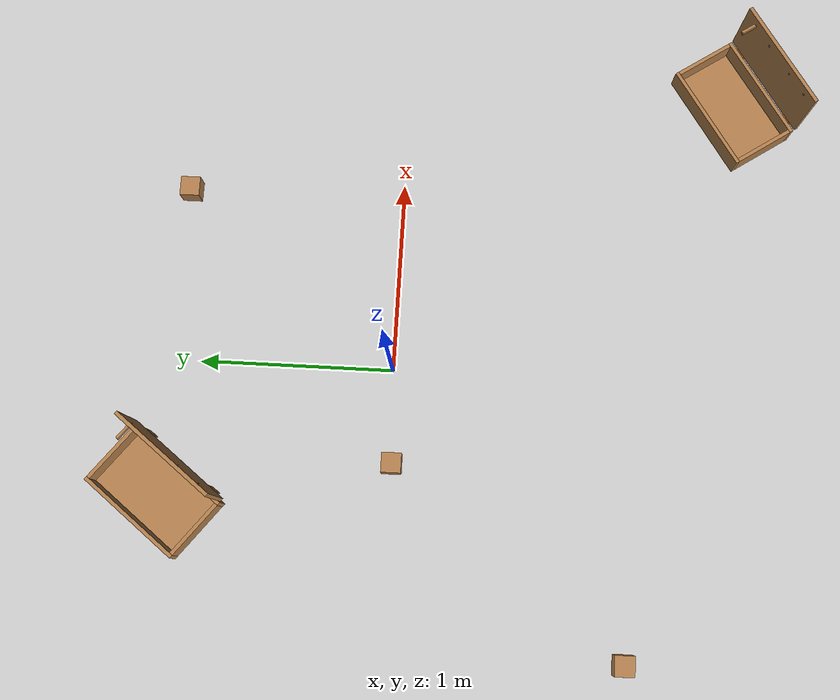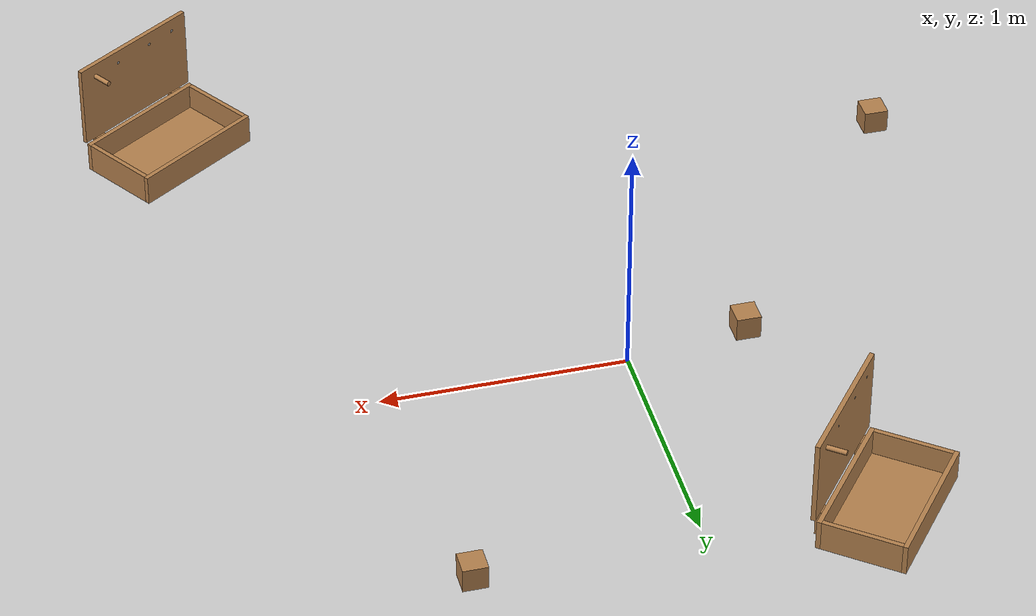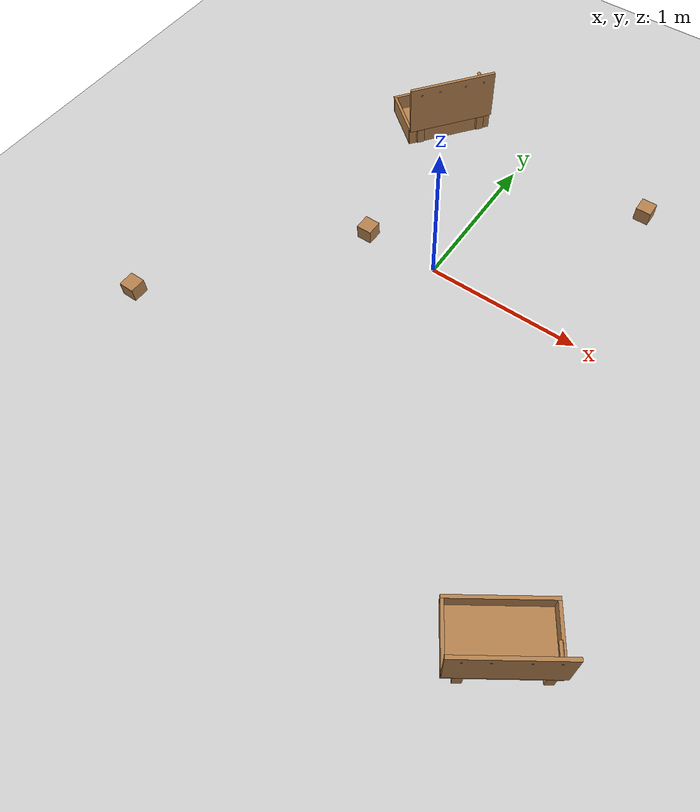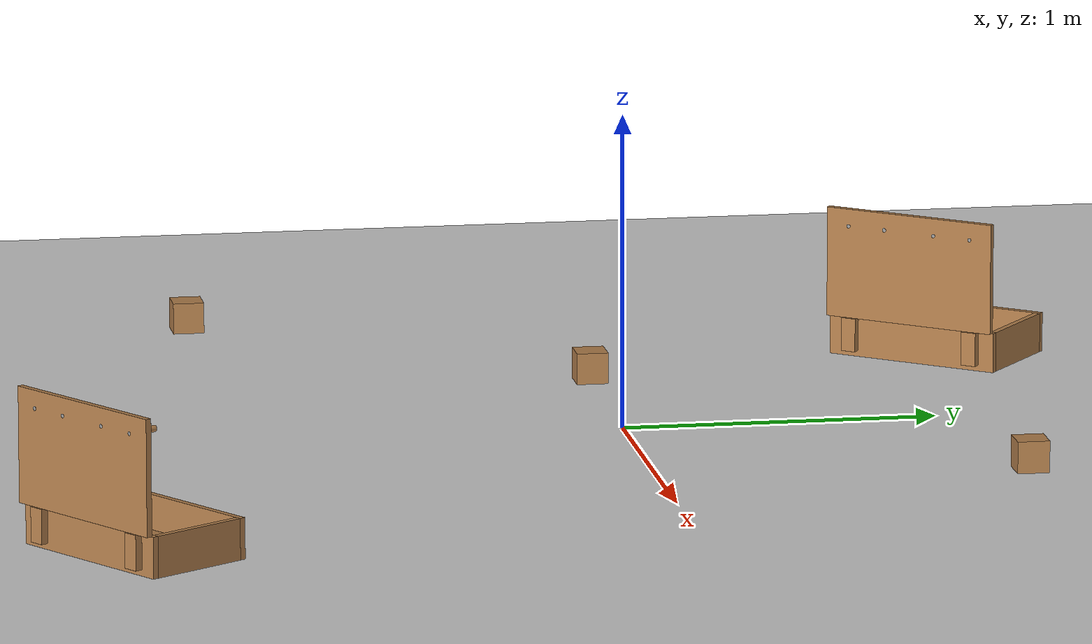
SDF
<sdf version="1.6">
 <world name="default">
  <light name="sun" type="directional">
   <pose>0 0 10 0 -0 0</pose>
   <diffuse>0.8 0.8 0.8 1</diffuse>
   <specular>0.2 0.2 0.2 1</specular>
   <attenuation>
    <range>1000</range>
    <constant>0.9</constant>
    <linear>0.01</linear>
    <quadratic>0.001</quadratic>
   </attenuation>
   <direction>-0.5 0.1 -0.9</direction>
  </light>
  <model name="ground_plane">
   <static>1</static>
   <link name="link">
    <collision name="collision">
     <geometry><plane><normal>0 0 1</normal><size>100 100</size></plane></geometry>
     <surface>
      <contact><collide_bitmask>65535</collide_bitmask></contact>
      <friction><ode><mu>100</mu><mu2>50</mu2></ode></friction>
     </surface>
    </collision>
    <visual name="visual">
     <cast_shadows>0</cast_shadows>
     <geometry><plane><normal>0 0 1</normal><size>100 100</size></plane></geometry>
     <material>
      <script><uri>file://media/materials/scripts/gazebo.material</uri><name>Gazebo/Grey</name></script>
     </material>
    </visual>
   </link>
  </model>
  <model name="cube1">
   <pose>0.903677 1.11493 0.04 0 -0 0</pose>
   <static>1</static>
   <link name="wood_cube_10cm::link">
    <pose>0 0 0.05 0 -0 0</pose>
    <inertial>
     <mass>0.5167</mass>
     <inertia>
      <ixx>0.000861167</ixx>
      <ixy>0</ixy>
      <ixz>0</ixz>
      <iyy>0.000861167</iyy>
      <iyz>0</iyz>
      <izz>0.000861167</izz>
     </inertia>
    </inertial>
    <collision name="collision">
     <geometry><box><size>0.1 0.1 0.1</size></box></geometry>
     <surface>
      <contact>
       <poissons_ratio>0.347</poissons_ratio>
       <elastic_modulus>8.8e+09</elastic_modulus>
       <ode><kp>100000</kp><kd>100</kd><max_vel>100</max_vel><min_depth>0.001</min_depth></ode>
      </contact>
      <friction>
       <torsional>
        <coefficient>1</coefficient>
        <use_patch_radius>0</use_patch_radius>
        <surface_radius>0.01</surface_radius>
       </torsional>
      </friction>
     </surface>
    </collision>
    <visual name="visual">
     <geometry><box><size>0.1 0.1 0.1</size></box></geometry>
     <material>
      <script><uri>file://media/materials/scripts/gazebo.material</uri><name>Gazebo/Wood</name></script>
     </material>
    </visual>
   </link>
  </model>
  <model name="cube2">
   <pose>-1.4 -1.2 0.04 0 -0 0</pose>
   <static>1</static>
   <link name="wood_cube_10cm::link">
    <pose>0 0 0.05 0 -0 0</pose>
    <inertial>
     <mass>0.5167</mass>
     <inertia>
      <ixx>0.000861167</ixx>
      <ixy>0</ixy>
      <ixz>0</ixz>
      <iyy>0.000861167</iyy>
      <iyz>0</iyz>
      <izz>0.000861167</izz>
     </inertia>
    </inertial>
    <collision name="collision">
     <geometry><box><size>0.1 0.1 0.1</size></box></geometry>
     <surface>
      <contact>
       <poissons_ratio>0.347</poissons_ratio>
       <elastic_modulus>8.8e+09</elastic_modulus>
       <ode><kp>100000</kp><kd>100</kd><max_vel>100</max_vel><min_depth>0.001</min_depth></ode>
      </contact>
      <friction>
       <torsional>
        <coefficient>1</coefficient>
        <use_patch_radius>0</use_patch_radius>
        <surface_radius>0.01</surface_radius>
       </torsional>
      </friction>
     </surface>
    </collision>
    <visual name="visual">
     <geometry><box><size>0.1 0.1 0.1</size></box></geometry>
     <material>
      <script><uri>file://media/materials/scripts/gazebo.material</uri><name>Gazebo/Wood</name></script>
     </material>
    </visual>
   </link>
  </model>
  <model name="cube3">
   <pose>-0.484485 -0.022922 0.04 0 -0 0</pose>
   <static>1</static>
   <link name="wood_cube_10cm::link">
    <pose>0 0 0.05 0 -0 0</pose>
    <inertial>
     <mass>0.5167</mass>
     <inertia>
      <ixx>0.000861167</ixx>
      <ixy>0</ixy>
      <ixz>0</ixz>
      <iyy>0.000861167</iyy>
      <iyz>0</iyz>
      <izz>0.000861167</izz>
     </inertia>
    </inertial>
    <collision name="collision">
     <geometry><box><size>0.1 0.1 0.1</size></box></geometry>
     <surface>
      <contact>
       <poissons_ratio>0.347</poissons_ratio>
       <elastic_modulus>8.8e+09</elastic_modulus>
       <ode><kp>100000</kp><kd>100</kd><max_vel>100</max_vel><min_depth>0.001</min_depth></ode>
      </contact>
      <friction>
       <torsional>
        <coefficient>1</coefficient>
        <use_patch_radius>0</use_patch_radius>
        <surface_radius>0.01</surface_radius>
       </torsional>
      </friction>
     </surface>
    </collision>
    <visual name="visual">
     <geometry><box><size>0.1 0.1 0.1</size></box></geometry>
     <material>
      <script><uri>file://media/materials/scripts/gazebo.material</uri><name>Gazebo/Wood</name></script>
     </material>
    </visual>
   </link>
  </model>
  <model name="wooden_case_wooden_peg2">
   <pose>-0.526357 1.0135 0.1087 2.48058 -1.57079 3.13884</pose>
   <static>1</static>
   <link name="wooden_case_wooden_peg::wooden_case::base">
    <pose>0 0 0.024 0 -0 0</pose>
    <inertial>
     <pose>-0.022184 0 0.171592 0 -0 0</pose>
     <mass>3.96264</mass>
     <inertia>
      <ixx>0.213536</ixx>
      <ixy>0</ixy>
      <ixz>0.000779377</ixz>
      <iyy>0.0708943</iyy>
      <iyz>0</iyz>
      <izz>0.154604</izz>
     </inertia>
    </inertial>
    <collision name="collision_back">
     <pose>-0.053975 0 0.1778 0 -0 0</pose>
     <geometry><box><size>0.01905 0.5461 0.3175</size></box></geometry>
     <surface>
      <contact>
       <poissons_ratio>0.347</poissons_ratio>
       <elastic_modulus>8.8e+09</elastic_modulus>
       <ode><kp>100000</kp><kd>100</kd><max_vel>100</max_vel><min_depth>0.001</min_depth></ode>
      </contact>
      <friction>
       <torsional>
        <coefficient>1</coefficient>
        <use_patch_radius>0</use_patch_radius>
        <surface_radius>0.01</surface_radius>
       </torsional>
      </friction>
     </surface>
    </collision>
    <visual name="visual_back">
     <pose>-0.053975 0 0.1778 0 -0 0</pose>
     <geometry><box><size>0.01905 0.5461 0.3175</size></box></geometry>
     <material>
      <script><uri>file://media/materials/scripts/gazebo.material</uri><name>Gazebo/Wood</name></script>
     </material>
    </visual>
    <collision name="collision_bottom">
     <pose>0 0 0.009525 0 -0 0</pose>
     <geometry><box><size>0.127 0.5842 0.01905</size></box></geometry>
     <surface>
      <contact>
       <poissons_ratio>0.347</poissons_ratio>
       <elastic_modulus>8.8e+09</elastic_modulus>
       <ode><kp>100000</kp><kd>100</kd><max_vel>100</max_vel><min_depth>0.001</min_depth></ode>
      </contact>
      <friction>
       <torsional>
        <coefficient>1</coefficient>
        <use_patch_radius>0</use_patch_radius>
        <surface_radius>0.01</surface_radius>
       </torsional>
      </friction>
     </surface>
    </collision>
    <visual name="visual_bottom">
     <pose>0 0 0.009525 0 -0 0</pose>
     <geometry><box><size>0.127 0.5842 0.01905</size></box></geometry>
     <material>
      <script><uri>file://media/materials/scripts/gazebo.material</uri><name>Gazebo/Wood</name></script>
     </material>
    </visual>
    <collision name="collision_top">
     <pose>0 0 0.346075 0 -0 0</pose>
     <geometry><box><size>0.127 0.5842 0.01905</size></box></geometry>
     <surface>
      <contact>
       <poissons_ratio>0.347</poissons_ratio>
       <elastic_modulus>8.8e+09</elastic_modulus>
       <ode><kp>100000</kp><kd>100</kd><max_vel>100</max_vel><min_depth>0.001</min_depth></ode>
      </contact>
      <friction>
       <torsional>
        <coefficient>1</coefficient>
        <use_patch_radius>0</use_patch_radius>
        <surface_radius>0.01</surface_radius>
       </torsional>
      </friction>
     </surface>
    </collision>
    <visual name="visual_top">
     <pose>0 0 0.346075 0 -0 0</pose>
     <geometry><box><size>0.127 0.5842 0.01905</size></box></geometry>
     <material>
      <script><uri>file://media/materials/scripts/gazebo.material</uri><name>Gazebo/Wood</name></script>
     </material>
    </visual>
    <collision name="collision_left">
     <pose>0 -0.282575 0.1778 0 -0 0</pose>
     <geometry><box><size>0.127 0.01905 0.3175</size></box></geometry>
     <surface>
      <contact>
       <poissons_ratio>0.347</poissons_ratio>
       <elastic_modulus>8.8e+09</elastic_modulus>
       <ode><kp>100000</kp><kd>100</kd><max_vel>100</max_vel><min_depth>0.001</min_depth></ode>
      </contact>
      <friction>
       <torsional>
        <coefficient>1</coefficient>
        <use_patch_radius>0</use_patch_radius>
        <surface_radius>0.01</surface_radius>
       </torsional>
      </friction>
     </surface>
    </collision>
    <visual name="visual_left">
     <pose>0 -0.282575 0.1778 0 -0 0</pose>
     <geometry><box><size>0.127 0.01905 0.3175</size></box></geometry>
     <material>
      <script><uri>file://media/materials/scripts/gazebo.material</uri><name>Gazebo/Wood</name></script>
     </material>
    </visual>
    <collision name="collision_right">
     <pose>0 0.282575 0.1778 0 -0 0</pose>
     <geometry><box><size>0.127 0.01905 0.3175</size></box></geometry>
     <surface>
      <contact>
       <poissons_ratio>0.347</poissons_ratio>
       <elastic_modulus>8.8e+09</elastic_modulus>
       <ode><kp>100000</kp><kd>100</kd><max_vel>100</max_vel><min_depth>0.001</min_depth></ode>
      </contact>
      <friction>
       <torsional>
        <coefficient>1</coefficient>
        <use_patch_radius>0</use_patch_radius>
        <surface_radius>0.01</surface_radius>
       </torsional>
      </friction>
     </surface>
    </collision>
    <visual name="visual_right">
     <pose>0 0.282575 0.1778 0 -0 0</pose>
     <geometry><box><size>0.127 0.01905 0.3175</size></box></geometry>
     <material>
      <script><uri>file://media/materials/scripts/gazebo.material</uri><name>Gazebo/Wood</name></script>
     </material>
    </visual>
    <collision name="collision_block_left">
     <pose>0.0095 -0.2151 -0.012 0 -0 0</pose>
     <geometry><box><size>0.108 0.05 0.024</size></box></geometry>
     <surface>
      <contact>
       <poissons_ratio>0.347</poissons_ratio>
       <elastic_modulus>8.8e+09</elastic_modulus>
       <ode><kp>100000</kp><kd>100</kd><max_vel>100</max_vel><min_depth>0.001</min_depth></ode>
      </contact>
      <friction>
       <torsional>
        <coefficient>1</coefficient>
        <use_patch_radius>0</use_patch_radius>
        <surface_radius>0.01</surface_radius>
       </torsional>
      </friction>
     </surface>
    </collision>
    <visual name="visual_block_left">
     <pose>0.0095 -0.2151 -0.012 0 -0 0</pose>
     <geometry><box><size>0.108 0.05 0.024</size></box></geometry>
     <material>
      <script><uri>file://media/materials/scripts/gazebo.material</uri><name>Gazebo/Wood</name></script>
     </material>
    </visual>
    <collision name="collision_block_right">
     <pose>0.0095 0.2151 -0.012 0 -0 0</pose>
     <geometry><box><size>0.108 0.05 0.024</size></box></geometry>
     <surface>
      <contact>
       <poissons_ratio>0.347</poissons_ratio>
       <elastic_modulus>8.8e+09</elastic_modulus>
       <ode><kp>100000</kp><kd>100</kd><max_vel>100</max_vel><min_depth>0.001</min_depth></ode>
      </contact>
      <friction>
       <torsional>
        <coefficient>1</coefficient>
        <use_patch_radius>0</use_patch_radius>
        <surface_radius>0.01</surface_radius>
       </torsional>
      </friction>
     </surface>
    </collision>
    <visual name="visual_block_right">
     <pose>0.0095 0.2151 -0.012 0 -0 0</pose>
     <geometry><box><size>0.108 0.05 0.024</size></box></geometry>
     <material>
      <script><uri>file://media/materials/scripts/gazebo.material</uri><name>Gazebo/Wood</name></script>
     </material>
    </visual>
   </link>
   <link name="wooden_case_wooden_peg::wooden_case::lid">
    <pose>0.243775 0 0.009525 0 -0 0</pose>
    <inertial>
     <mass>1.97874</mass>
     <inertia>
      <ixx>0.0563367</ixx>
      <ixy>0</ixy>
      <ixz>0</ixz>
      <iyy>0.020911</iyy>
      <iyz>0</iyz>
      <izz>0.0771281</izz>
     </inertia>
    </inertial>
    <collision name="collision">
     <geometry><box><size>0.3556 0.5842 0.01905</size></box></geometry>
     <surface>
      <contact>
       <poissons_ratio>0.347</poissons_ratio>
       <elastic_modulus>8.8e+09</elastic_modulus>
       <ode><kp>100000</kp><kd>100</kd><max_vel>100</max_vel><min_depth>0.001</min_depth></ode>
      </contact>
      <friction>
       <torsional>
        <coefficient>1</coefficient>
        <use_patch_radius>0</use_patch_radius>
        <surface_radius>0.01</surface_radius>
       </torsional>
      </friction>
     </surface>
    </collision>
    <visual name="visual">
     <geometry><box><size>0.3556 0.5842 0.01905</size></box></geometry>
     <material>
      <script><uri>file://media/materials/scripts/gazebo.material</uri><name>Gazebo/Wood</name></script>
     </material>
    </visual>
    <visual name="tee_nut_1">
     <pose>0.122 -0.216 0 0 -0 0</pose>
     <geometry><cylinder><radius>0.00635</radius><length>0.0192405</length></cylinder></geometry>
     <material>
      <script><uri>file://media/materials/scripts/gazebo.material</uri><name>Gazebo/Grey</name></script>
     </material>
    </visual>
    <visual name="tee_nut_2">
     <pose>0.122 -0.088 0 0 -0 0</pose>
     <geometry><cylinder><radius>0.00635</radius><length>0.0192405</length></cylinder></geometry>
     <material>
      <script><uri>file://media/materials/scripts/gazebo.material</uri><name>Gazebo/Grey</name></script>
     </material>
    </visual>
    <visual name="tee_nut_3">
     <pose>0.122 0.088 0 0 -0 0</pose>
     <geometry><cylinder><radius>0.00635</radius><length>0.0192405</length></cylinder></geometry>
     <material>
      <script><uri>file://media/materials/scripts/gazebo.material</uri><name>Gazebo/Grey</name></script>
     </material>
    </visual>
    <visual name="tee_nut_4">
     <pose>0.122 0.216 0 0 -0 0</pose>
     <geometry><cylinder><radius>0.00635</radius><length>0.0192405</length></cylinder></geometry>
     <material>
      <script><uri>file://media/materials/scripts/gazebo.material</uri><name>Gazebo/Grey</name></script>
     </material>
    </visual>
   </link>
   <joint name="wooden_case_wooden_peg::wooden_case::lid_hinge" type="revolute">
    <pose>-0.1778 0 0.01905 0 -0 0</pose>
    <parent>wooden_case_wooden_peg::wooden_case::base</parent>
    <child>wooden_case_wooden_peg::wooden_case::lid</child>
    <axis>
     <xyz>0 1 0</xyz>
     <limit><upper>0.523599</upper><lower>-1.5708</lower></limit>
     <use_parent_model_frame>0</use_parent_model_frame>
     <dynamics><spring_reference>0</spring_reference><spring_stiffness>0</spring_stiffness></dynamics>
    </axis>
   </joint>
   <link name="wooden_case_wooden_peg::peg::link">
    <pose>0.365774 0.216 0.05905 0 -0 0</pose>
    <inertial>
     <mass>0.0175</mass>
     <inertia>
      <ixx>9.74923e-06</ixx>
      <ixy>0</ixy>
      <ixz>0</ixz>
      <iyy>9.74923e-06</iyy>
      <iyz>0</iyz>
      <izz>8.31797e-07</izz>
     </inertia>
    </inertial>
    <collision name="collision">
     <geometry><cylinder><radius>0.00975</radius><length>0.08</length></cylinder></geometry>
     <surface>
      <contact>
       <poissons_ratio>0.347</poissons_ratio>
       <elastic_modulus>8.8e+09</elastic_modulus>
       <ode><kp>100000</kp><kd>100</kd><max_vel>100</max_vel><min_depth>0.001</min_depth></ode>
      </contact>
      <friction>
       <torsional>
        <coefficient>1</coefficient>
        <use_patch_radius>0</use_patch_radius>
        <surface_radius>0.01</surface_radius>
       </torsional>
      </friction>
     </surface>
    </collision>
    <visual name="visual">
     <geometry><cylinder><radius>0.00975</radius><length>0.08</length></cylinder></geometry>
     <material>
      <script><uri>file://media/materials/scripts/gazebo.material</uri><name>Gazebo/Wood</name></script>
     </material>
    </visual>
   </link>
   <joint name="wooden_case_wooden_peg::case_peg" type="revolute">
    <child>wooden_case_wooden_peg::peg::link</child>
    <parent>wooden_case_wooden_peg::wooden_case::lid</parent>
    <axis>
     <xyz>0 0 1</xyz>
     <limit><upper>0</upper><lower>0</lower></limit>
     <use_parent_model_frame>0</use_parent_model_frame>
     <dynamics><spring_reference>0</spring_reference><spring_stiffness>0</spring_stiffness></dynamics>
    </axis>
   </joint>
  </model>
  <gravity>0 0 -9.8</gravity>
  <magnetic_field>6e-06 2.3e-05 -4.2e-05</magnetic_field>
  <atmosphere type="adiabatic"/>
  <physics name="default_physics" default="0" type="ode">
   <max_step_size>0.001</max_step_size>
   <real_time_factor>1</real_time_factor>
   <real_time_update_rate>1000</real_time_update_rate>
  </physics>
  <scene><ambient>0.4 0.4 0.4 1</ambient><background>0.7 0.7 0.7 1</background><shadows>1</shadows></scene>
  <audio><device>default</device></audio>
  <spherical_coordinates>
   <surface_model>EARTH_WGS84</surface_model>
   <latitude_deg>0</latitude_deg>
   <longitude_deg>0</longitude_deg>
   <elevation>0</elevation>
   <heading_deg>0</heading_deg>
  </spherical_coordinates>
  <model name="wooden_case_wooden_peg2_clone">
   <pose>1.61248 -1.88464 0.1087 2.15497 -1.57079 -3.14123</pose>
   <static>1</static>
   <link name="wooden_case_wooden_peg::wooden_case::base">
    <pose>0 0 0.024 0 -0 0</pose>
    <inertial>
     <pose>-0.022184 0 0.171592 0 -0 0</pose>
     <mass>3.96264</mass>
     <inertia>
      <ixx>0.213536</ixx>
      <ixy>0</ixy>
      <ixz>0.000779377</ixz>
      <iyy>0.0708943</iyy>
      <iyz>0</iyz>
      <izz>0.154604</izz>
     </inertia>
    </inertial>
    <collision name="collision_back">
     <pose>-0.053975 0 0.1778 0 -0 0</pose>
     <geometry><box><size>0.01905 0.5461 0.3175</size></box></geometry>
     <surface>
      <contact>
       <poissons_ratio>0.347</poissons_ratio>
       <elastic_modulus>8.8e+09</elastic_modulus>
       <ode><kp>100000</kp><kd>100</kd><max_vel>100</max_vel><min_depth>0.001</min_depth></ode>
      </contact>
      <friction>
       <torsional>
        <coefficient>1</coefficient>
        <use_patch_radius>0</use_patch_radius>
        <surface_radius>0.01</surface_radius>
       </torsional>
      </friction>
     </surface>
    </collision>
    <visual name="visual_back">
     <pose>-0.053975 0 0.1778 0 -0 0</pose>
     <geometry><box><size>0.01905 0.5461 0.3175</size></box></geometry>
     <material>
      <script><uri>file://media/materials/scripts/gazebo.material</uri><name>Gazebo/Wood</name></script>
     </material>
    </visual>
    <collision name="collision_bottom">
     <pose>0 0 0.009525 0 -0 0</pose>
     <geometry><box><size>0.127 0.5842 0.01905</size></box></geometry>
     <surface>
      <contact>
       <poissons_ratio>0.347</poissons_ratio>
       <elastic_modulus>8.8e+09</elastic_modulus>
       <ode><kp>100000</kp><kd>100</kd><max_vel>100</max_vel><min_depth>0.001</min_depth></ode>
      </contact>
      <friction>
       <torsional>
        <coefficient>1</coefficient>
        <use_patch_radius>0</use_patch_radius>
        <surface_radius>0.01</surface_radius>
       </torsional>
      </friction>
     </surface>
    </collision>
    <visual name="visual_bottom">
     <pose>0 0 0.009525 0 -0 0</pose>
     <geometry><box><size>0.127 0.5842 0.01905</size></box></geometry>
     <material>
      <script><uri>file://media/materials/scripts/gazebo.material</uri><name>Gazebo/Wood</name></script>
     </material>
    </visual>
    <collision name="collision_top">
     <pose>0 0 0.346075 0 -0 0</pose>
     <geometry><box><size>0.127 0.5842 0.01905</size></box></geometry>
     <surface>
      <contact>
       <poissons_ratio>0.347</poissons_ratio>
       <elastic_modulus>8.8e+09</elastic_modulus>
       <ode><kp>100000</kp><kd>100</kd><max_vel>100</max_vel><min_depth>0.001</min_depth></ode>
      </contact>
      <friction>
       <torsional>
        <coefficient>1</coefficient>
        <use_patch_radius>0</use_patch_radius>
        <surface_radius>0.01</surface_radius>
       </torsional>
      </friction>
     </surface>
    </collision>
    <visual name="visual_top">
     <pose>0 0 0.346075 0 -0 0</pose>
     <geometry><box><size>0.127 0.5842 0.01905</size></box></geometry>
     <material>
      <script><uri>file://media/materials/scripts/gazebo.material</uri><name>Gazebo/Wood</name></script>
     </material>
    </visual>
    <collision name="collision_left">
     <pose>0 -0.282575 0.1778 0 -0 0</pose>
     <geometry><box><size>0.127 0.01905 0.3175</size></box></geometry>
     <surface>
      <contact>
       <poissons_ratio>0.347</poissons_ratio>
       <elastic_modulus>8.8e+09</elastic_modulus>
       <ode><kp>100000</kp><kd>100</kd><max_vel>100</max_vel><min_depth>0.001</min_depth></ode>
      </contact>
      <friction>
       <torsional>
        <coefficient>1</coefficient>
        <use_patch_radius>0</use_patch_radius>
        <surface_radius>0.01</surface_radius>
       </torsional>
      </friction>
     </surface>
    </collision>
    <visual name="visual_left">
     <pose>0 -0.282575 0.1778 0 -0 0</pose>
     <geometry><box><size>0.127 0.01905 0.3175</size></box></geometry>
     <material>
      <script><uri>file://media/materials/scripts/gazebo.material</uri><name>Gazebo/Wood</name></script>
     </material>
    </visual>
    <collision name="collision_right">
     <pose>0 0.282575 0.1778 0 -0 0</pose>
     <geometry><box><size>0.127 0.01905 0.3175</size></box></geometry>
     <surface>
      <contact>
       <poissons_ratio>0.347</poissons_ratio>
       <elastic_modulus>8.8e+09</elastic_modulus>
       <ode><kp>100000</kp><kd>100</kd><max_vel>100</max_vel><min_depth>0.001</min_depth></ode>
      </contact>
      <friction>
       <torsional>
        <coefficient>1</coefficient>
        <use_patch_radius>0</use_patch_radius>
        <surface_radius>0.01</surface_radius>
       </torsional>
      </friction>
     </surface>
    </collision>
    <visual name="visual_right">
     <pose>0 0.282575 0.1778 0 -0 0</pose>
     <geometry><box><size>0.127 0.01905 0.3175</size></box></geometry>
     <material>
      <script><uri>file://media/materials/scripts/gazebo.material</uri><name>Gazebo/Wood</name></script>
     </material>
    </visual>
    <collision name="collision_block_left">
     <pose>0.0095 -0.2151 -0.012 0 -0 0</pose>
     <geometry><box><size>0.108 0.05 0.024</size></box></geometry>
     <surface>
      <contact>
       <poissons_ratio>0.347</poissons_ratio>
       <elastic_modulus>8.8e+09</elastic_modulus>
       <ode><kp>100000</kp><kd>100</kd><max_vel>100</max_vel><min_depth>0.001</min_depth></ode>
      </contact>
      <friction>
       <torsional>
        <coefficient>1</coefficient>
        <use_patch_radius>0</use_patch_radius>
        <surface_radius>0.01</surface_radius>
       </torsional>
      </friction>
     </surface>
    </collision>
    <visual name="visual_block_left">
     <pose>0.0095 -0.2151 -0.012 0 -0 0</pose>
     <geometry><box><size>0.108 0.05 0.024</size></box></geometry>
     <material>
      <script><uri>file://media/materials/scripts/gazebo.material</uri><name>Gazebo/Wood</name></script>
     </material>
    </visual>
    <collision name="collision_block_right">
     <pose>0.0095 0.2151 -0.012 0 -0 0</pose>
     <geometry><box><size>0.108 0.05 0.024</size></box></geometry>
     <surface>
      <contact>
       <poissons_ratio>0.347</poissons_ratio>
       <elastic_modulus>8.8e+09</elastic_modulus>
       <ode><kp>100000</kp><kd>100</kd><max_vel>100</max_vel><min_depth>0.001</min_depth></ode>
      </contact>
      <friction>
       <torsional>
        <coefficient>1</coefficient>
        <use_patch_radius>0</use_patch_radius>
        <surface_radius>0.01</surface_radius>
       </torsional>
      </friction>
     </surface>
    </collision>
    <visual name="visual_block_right">
     <pose>0.0095 0.2151 -0.012 0 -0 0</pose>
     <geometry><box><size>0.108 0.05 0.024</size></box></geometry>
     <material>
      <script><uri>file://media/materials/scripts/gazebo.material</uri><name>Gazebo/Wood</name></script>
     </material>
    </visual>
   </link>
   <link name="wooden_case_wooden_peg::wooden_case::lid">
    <pose>0.243775 0 0.009525 0 -0 0</pose>
    <inertial>
     <mass>1.97874</mass>
     <inertia>
      <ixx>0.0563367</ixx>
      <ixy>0</ixy>
      <ixz>0</ixz>
      <iyy>0.020911</iyy>
      <iyz>0</iyz>
      <izz>0.0771281</izz>
     </inertia>
    </inertial>
    <collision name="collision">
     <geometry><box><size>0.3556 0.5842 0.01905</size></box></geometry>
     <surface>
      <contact>
       <poissons_ratio>0.347</poissons_ratio>
       <elastic_modulus>8.8e+09</elastic_modulus>
       <ode><kp>100000</kp><kd>100</kd><max_vel>100</max_vel><min_depth>0.001</min_depth></ode>
      </contact>
      <friction>
       <torsional>
        <coefficient>1</coefficient>
        <use_patch_radius>0</use_patch_radius>
        <surface_radius>0.01</surface_radius>
       </torsional>
      </friction>
     </surface>
    </collision>
    <visual name="visual">
     <geometry><box><size>0.3556 0.5842 0.01905</size></box></geometry>
     <material>
      <script><uri>file://media/materials/scripts/gazebo.material</uri><name>Gazebo/Wood</name></script>
     </material>
    </visual>
    <visual name="tee_nut_1">
     <pose>0.122 -0.216 0 0 -0 0</pose>
     <geometry><cylinder><radius>0.00635</radius><length>0.0192405</length></cylinder></geometry>
     <material>
      <script><uri>file://media/materials/scripts/gazebo.material</uri><name>Gazebo/Grey</name></script>
     </material>
    </visual>
    <visual name="tee_nut_2">
     <pose>0.122 -0.088 0 0 -0 0</pose>
     <geometry><cylinder><radius>0.00635</radius><length>0.0192405</length></cylinder></geometry>
     <material>
      <script><uri>file://media/materials/scripts/gazebo.material</uri><name>Gazebo/Grey</name></script>
     </material>
    </visual>
    <visual name="tee_nut_3">
     <pose>0.122 0.088 0 0 -0 0</pose>
     <geometry><cylinder><radius>0.00635</radius><length>0.0192405</length></cylinder></geometry>
     <material>
      <script><uri>file://media/materials/scripts/gazebo.material</uri><name>Gazebo/Grey</name></script>
     </material>
    </visual>
    <visual name="tee_nut_4">
     <pose>0.122 0.216 0 0 -0 0</pose>
     <geometry><cylinder><radius>0.00635</radius><length>0.0192405</length></cylinder></geometry>
     <material>
      <script><uri>file://media/materials/scripts/gazebo.material</uri><name>Gazebo/Grey</name></script>
     </material>
    </visual>
   </link>
   <joint name="wooden_case_wooden_peg::wooden_case::lid_hinge" type="revolute">
    <pose>-0.1778 0 0.01905 0 -0 0</pose>
    <parent>wooden_case_wooden_peg::wooden_case::base</parent>
    <child>wooden_case_wooden_peg::wooden_case::lid</child>
    <axis>
     <xyz>0 1 0</xyz>
     <limit><upper>0.523599</upper><lower>-1.5708</lower></limit>
     <use_parent_model_frame>0</use_parent_model_frame>
     <dynamics><spring_reference>0</spring_reference><spring_stiffness>0</spring_stiffness></dynamics>
    </axis>
   </joint>
   <link name="wooden_case_wooden_peg::peg::link">
    <pose>0.365774 0.216 0.05905 0 -0 0</pose>
    <inertial>
     <mass>0.0175</mass>
     <inertia>
      <ixx>9.74923e-06</ixx>
      <ixy>0</ixy>
      <ixz>0</ixz>
      <iyy>9.74923e-06</iyy>
      <iyz>0</iyz>
      <izz>8.31797e-07</izz>
     </inertia>
    </inertial>
    <collision name="collision">
     <geometry><cylinder><radius>0.00975</radius><length>0.08</length></cylinder></geometry>
     <surface>
      <contact>
       <poissons_ratio>0.347</poissons_ratio>
       <elastic_modulus>8.8e+09</elastic_modulus>
       <ode><kp>100000</kp><kd>100</kd><max_vel>100</max_vel><min_depth>0.001</min_depth></ode>
      </contact>
      <friction>
       <torsional>
        <coefficient>1</coefficient>
        <use_patch_radius>0</use_patch_radius>
        <surface_radius>0.01</surface_radius>
       </torsional>
      </friction>
     </surface>
    </collision>
    <visual name="visual">
     <geometry><cylinder><radius>0.00975</radius><length>0.08</length></cylinder></geometry>
     <material>
      <script><uri>file://media/materials/scripts/gazebo.material</uri><name>Gazebo/Wood</name></script>
     </material>
    </visual>
   </link>
   <joint name="wooden_case_wooden_peg::case_peg" type="revolute">
    <child>wooden_case_wooden_peg::peg::link</child>
    <parent>wooden_case_wooden_peg::wooden_case::lid</parent>
    <axis>
     <xyz>0 0 1</xyz>
     <limit><upper>0</upper><lower>0</lower></limit>
     <use_parent_model_frame>0</use_parent_model_frame>
     <dynamics><spring_reference>0</spring_reference><spring_stiffness>0</spring_stiffness></dynamics>
    </axis>
   </joint>
  </model>
 </world>
</sdf>
